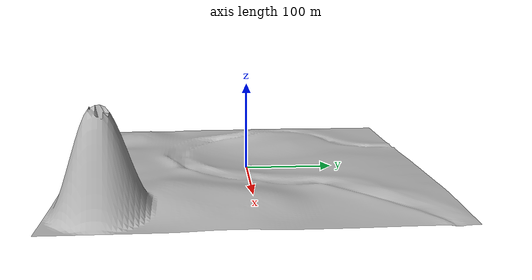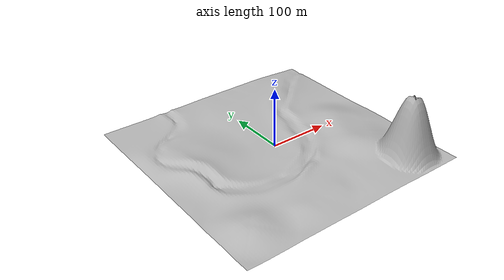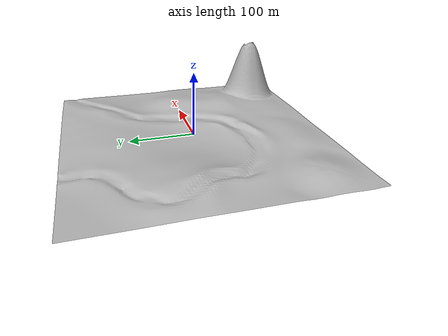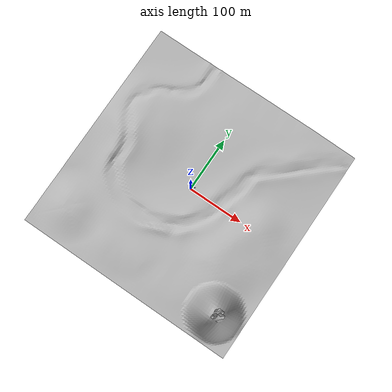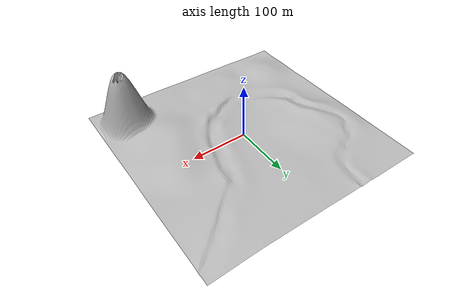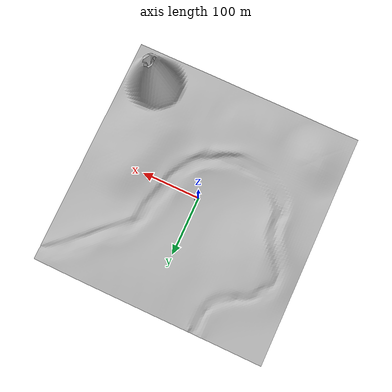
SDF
<?xml version="1.0" ?>
<sdf version="1.9">
  <world name="my_park_world">
    <physics name="1ms" type="ignored">
      <max_step_size>0.004</max_step_size>
      <real_time_factor>1.0</real_time_factor>
    </physics>

    <plugin filename="gz-sim-physics-system" name="gz::sim::systems::Physics"></plugin>
    <plugin filename="gz-sim-user-commands-system" name="gz::sim::systems::UserCommands"></plugin>
    <plugin filename="gz-sim-scene-broadcaster-system" name="gz::sim::systems::SceneBroadcaster"></plugin>
    <plugin filename="gz-sim-sensors-system" name="gz::sim::systems::Sensors">
      <render_engine>ogre2</render_engine>
    </plugin>
    <plugin filename="gz-sim-imu-system" name="gz::sim::systems::Imu"></plugin>
    <plugin filename="gz-sim-air-pressure-system" name="gz::sim::systems::AirPressure"></plugin>
    <plugin filename="gz-sim-magnetometer-system" name="gz::sim::systems::Magnetometer"></plugin>
    <plugin filename="gz-sim-apply-link-wrench-system" name="gz::sim::systems::ApplyLinkWrench"></plugin>
    <plugin filename="gz-sim-navsat-system" name="gz::sim::systems::NavSat"></plugin>
    <plugin filename="gz-sim-contact-system" name="gz::sim::systems::Contact"></plugin>

    <gravity>0 0 -9.8</gravity>
    <magnetic_field>6e-06 2.3e-05 -4.2e-05</magnetic_field>
    <atmosphere type="adiabatic"/>

    <scene>
      <grid>false</grid>
      <ambient>1.0 1.0 1.0</ambient>
      <background>0.8 0.8 0.8</background>
      <shadows>false</shadows>
    </scene>

    <spherical_coordinates>
      <surface_model>EARTH_WGS84</surface_model>
      <world_frame_orientation>ENU</world_frame_orientation>
      <latitude_deg>47.397971057728974</latitude_deg>
      <longitude_deg>8.546163739800146</longitude_deg>
      <elevation>0</elevation>
      <heading_deg>0</heading_deg>
    </spherical_coordinates>

    <light type="directional" name="sun">
      <cast_shadows>false</cast_shadows>
      <pose>0 0 10 0 0 0</pose>
      <diffuse>0.8 0.8 0.8 1</diffuse>
      <specular>0.2 0.2 0.2 1</specular>
      <attenuation>
        <range>1000</range>
        <constant>0.9</constant>
        <linear>0.01</linear>
        <quadratic>0.001</quadratic>
      </attenuation>
      <direction>-0.5 0.1 -0.9</direction>
    </light>

    <model name="ground_plane">
      <static>true</static>
      <link name="link">
        <collision name="collision">
          <geometry>
            <plane>
              <normal>0 0 1</normal>
              <size>2000 2000</size>
            </plane>
          </geometry>
          <surface>
            <friction>
              <ode>
                <mu>1.0</mu>
                <mu2>1.0</mu2>
              </ode>
            </friction>
          </surface>
        </collision>
      </link>
    </model>

    <include>
      <uri>model://my_park</uri>
      <n>my_park</n>
      <pose>0 0 0 0 0 0</pose>
    </include>

    <model name="ackermann_rover">
      <pose>5 5 3 0 0 0</pose>

      <link name="chassis">
        <pose>-0.151427 0 0.175 0 0 0</pose>
        <inertial>
          <mass>1.14395</mass>
          <inertia>
            <ixx>0.126164</ixx>
            <ixy>0</ixy>
            <ixz>0</ixz>
            <iyy>0.416519</iyy>
            <iyz>0</iyz>
            <izz>0.481014</izz>
          </inertia>
        </inertial>
        <visual name="visual">
          <geometry>
            <box>
              <size>2.01142 1 0.568726</size>
            </box>
          </geometry>
          <material>
            <ambient>0.5 0.5 1.0 1</ambient>
            <diffuse>0.5 0.5 1.0 1</diffuse>
            <specular>0.0 0.0 1.0 1</specular>
          </material>
        </visual>
        <collision name="collision">
          <geometry>
            <box>
              <size>2.01142 1 0.568726</size>
            </box>
          </geometry>
        </collision>
      </link>

      <link name="front_left_wheel">
        <pose>0.554283 0.625029 -0.025 -1.5707 0 0</pose>
        <inertial>
          <mass>2</mass>
          <inertia>
            <ixx>0.145833</ixx>
            <ixy>0</ixy>
            <ixz>0</ixz>
            <iyy>0.145833</iyy>
            <iyz>0</iyz>
            <izz>0.125</izz>
          </inertia>
        </inertial>
        <visual name="visual">
          <geometry>
            <cylinder>
              <length>0.15</length>
              <radius>0.3</radius>
            </cylinder>
          </geometry>
          <material>
            <ambient>0.2 0.2 0.2 1</ambient>
            <diffuse>0.2 0.2 0.2 1</diffuse>
            <specular>0.2 0.2 0.2 1</specular>
          </material>
        </visual>
        <collision name="collision">
          <geometry>
            <cylinder>
              <length>0.15</length>
              <radius>0.3</radius>
            </cylinder>
          </geometry>
          <surface>
            <friction>
              <ode>
                <mu>1.0</mu>
                <mu2>1.0</mu2>
                <fdir1>0 0 1</fdir1>
              </ode>
            </friction>
          </surface>
        </collision>
      </link>

      <link name="rear_left_wheel">
        <pose>-0.957138 0.625029 -0.025 -1.5707 0 0</pose>
        <inertial>
          <mass>2</mass>
          <inertia>
            <ixx>0.145833</ixx>
            <ixy>0</ixy>
            <ixz>0</ixz>
            <iyy>0.145833</iyy>
            <iyz>0</iyz>
            <izz>0.125</izz>
          </inertia>
        </inertial>
        <visual name="visual">
          <geometry>
            <cylinder>
              <length>0.15</length>
              <radius>0.3</radius>
            </cylinder>
          </geometry>
          <material>
            <ambient>0.2 0.2 0.2 1</ambient>
            <diffuse>0.2 0.2 0.2 1</diffuse>
            <specular>0.2 0.2 0.2 1</specular>
          </material>
        </visual>
        <collision name="collision">
          <geometry>
            <cylinder>
              <length>0.15</length>
              <radius>0.3</radius>
            </cylinder>
          </geometry>
          <surface>
            <friction>
              <ode>
                <mu>1.0</mu>
                <mu2>1.0</mu2>
                <fdir1>0 0 1</fdir1>
              </ode>
            </friction>
          </surface>
        </collision>
      </link>

      <link name="front_right_wheel">
        <pose>0.554282 -0.625029 -0.025 -1.5707 0 0</pose>
        <inertial>
          <mass>2</mass>
          <inertia>
            <ixx>0.145833</ixx>
            <ixy>0</ixy>
            <ixz>0</ixz>
            <iyy>0.145833</iyy>
            <iyz>0</iyz>
            <izz>0.125</izz>
          </inertia>
        </inertial>
        <visual name="visual">
          <geometry>
            <cylinder>
              <length>0.15</length>
              <radius>0.3</radius>
            </cylinder>
          </geometry>
          <material>
            <ambient>0.2 0.2 0.2 1</ambient>
            <diffuse>0.2 0.2 0.2 1</diffuse>
            <specular>0.2 0.2 0.2 1</specular>
          </material>
        </visual>
        <collision name="collision">
          <geometry>
            <cylinder>
              <length>0.15</length>
              <radius>0.3</radius>
            </cylinder>
          </geometry>
          <surface>
            <friction>
              <ode>
                <mu>1.0</mu>
                <mu2>1.0</mu2>
                <fdir1>0 0 1</fdir1>
              </ode>
            </friction>
          </surface>
        </collision>
      </link>

      <link name="rear_right_wheel">
        <pose>-0.957138 -0.625029 -0.025 -1.5707 0 0</pose>
        <inertial>
          <mass>2</mass>
          <inertia>
            <ixx>0.145833</ixx>
            <ixy>0</ixy>
            <ixz>0</ixz>
            <iyy>0.145833</iyy>
            <iyz>0</iyz>
            <izz>0.125</izz>
          </inertia>
        </inertial>
        <visual name="visual">
          <geometry>
            <cylinder>
              <length>0.15</length>
              <radius>0.3</radius>
            </cylinder>
          </geometry>
          <material>
            <ambient>0.2 0.2 0.2 1</ambient>
            <diffuse>0.2 0.2 0.2 1</diffuse>
            <specular>0.2 0.2 0.2 1</specular>
          </material>
        </visual>
        <collision name="collision">
          <geometry>
            <cylinder>
              <length>0.15</length>
              <radius>0.3</radius>
            </cylinder>
          </geometry>
          <surface>
            <friction>
              <ode>
                <mu>1.0</mu>
                <mu2>1.0</mu2>
                <fdir1>0 0 1</fdir1>
              </ode>
            </friction>
          </surface>
        </collision>
      </link>

      <link name="front_left_wheel_steering_link">
        <pose>0.554283 0.5 0.02 0 0 0</pose>
        <inertial>
          <mass>0.5</mass>
          <inertia>
            <ixx>0.0153</ixx>
            <iyy>0.025</iyy>
            <izz>0.0153</izz>
          </inertia>
        </inertial>
        <visual name="visual">
          <geometry>
            <cylinder>
              <length>0.1</length>
              <radius>0.03</radius>
            </cylinder>
          </geometry>
          <material>
            <ambient>1 1 1 1</ambient>
            <diffuse>1 1 1 1</diffuse>
          </material>
        </visual>
      </link>

      <link name="front_right_wheel_steering_link">
        <pose>0.554283 -0.5 0.02 0 0 0</pose>
        <inertial>
          <mass>0.5</mass>
          <inertia>
            <ixx>0.0153</ixx>
            <iyy>0.025</iyy>
            <izz>0.0153</izz>
          </inertia>
        </inertial>
        <visual name="visual">
          <geometry>
            <cylinder>
              <length>0.1</length>
              <radius>0.03</radius>
            </cylinder>
          </geometry>
          <material>
            <ambient>1 1 1 1</ambient>
            <diffuse>1 1 1 1</diffuse>
          </material>
        </visual>
      </link>

      <joint name="front_left_wheel_steering_joint" type="revolute">
        <parent>chassis</parent>
        <child>front_left_wheel_steering_link</child>
        <axis>
          <xyz>0 0 1</xyz>
          <limit>
            <lower>-0.6</lower>
            <upper>0.6</upper>
            <velocity>1.0</velocity>
            <effort>25</effort>
          </limit>
        </axis>
      </joint>

      <joint name="front_right_wheel_steering_joint" type="revolute">
        <parent>chassis</parent>
        <child>front_right_wheel_steering_link</child>
        <axis>
          <xyz>0 0 1</xyz>
          <limit>
            <lower>-0.6</lower>
            <upper>0.6</upper>
            <velocity>1.0</velocity>
            <effort>25</effort>
          </limit>
        </axis>
      </joint>

      <joint name="front_left_wheel_joint" type="revolute">
        <parent>front_left_wheel_steering_link</parent>
        <child>front_left_wheel</child>
        <axis>
          <xyz>0 0 1</xyz>
          <limit>
            <lower>-1.79769e+308</lower>
            <upper>1.79769e+308</upper>
          </limit>
        </axis>
      </joint>

      <joint name="front_right_wheel_joint" type="revolute">
        <parent>front_right_wheel_steering_link</parent>
        <child>front_right_wheel</child>
        <axis>
          <xyz>0 0 1</xyz>
          <limit>
            <lower>-1.79769e+308</lower>
            <upper>1.79769e+308</upper>
          </limit>
        </axis>
      </joint>

      <joint name="rear_left_wheel_joint" type="revolute">
        <parent>chassis</parent>
        <child>rear_left_wheel</child>
        <axis>
          <xyz>0 0 1</xyz>
          <limit>
            <lower>-1.79769e+308</lower>
            <upper>1.79769e+308</upper>
          </limit>
        </axis>
      </joint>

      <joint name="rear_right_wheel_joint" type="revolute">
        <parent>chassis</parent>
        <child>rear_right_wheel</child>
        <axis>
          <xyz>0 0 1</xyz>
          <limit>
            <lower>-1.79769e+308</lower>
            <upper>1.79769e+308</upper>
          </limit>
        </axis>
      </joint>

      <plugin filename="gz-sim-ackermann-steering-system" name="gz::sim::systems::AckermannSteering">
        <left_joint>front_left_wheel_joint</left_joint>
        <left_joint>rear_left_wheel_joint</left_joint>
        <right_joint>front_right_wheel_joint</right_joint>
        <right_joint>rear_right_wheel_joint</right_joint>
        <left_steering_joint>front_left_wheel_steering_joint</left_steering_joint>
        <right_steering_joint>front_right_wheel_steering_joint</right_steering_joint>
        <kingpin_width>1.0</kingpin_width>
        <steering_limit>0.5</steering_limit>
        <wheel_base>1.5</wheel_base>
        <wheel_separation>1.25</wheel_separation>
        <wheel_radius>0.3</wheel_radius>
        <min_velocity>-2</min_velocity>
        <max_velocity>2</max_velocity>
        <min_acceleration>-3</min_acceleration>
        <max_acceleration>3</max_acceleration>
        <topic>cmd_vel</topic>
        <odom_topic>odom</odom_topic>
        <frame_id>odom</frame_id>
        <child_frame_id>chassis</child_frame_id>
      </plugin>

      <plugin filename="gz-sim-joint-state-publisher-system" name="gz::sim::systems::JointStatePublisher"/>

    </model>

  </world>
</sdf>

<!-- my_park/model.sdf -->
<sdf version="1.9">
  <model name="my_park">
    <static>true</static>
    <link name="link">
      <visual name="visual">
        <pose>0 0 0 1.5708 0 3.1415</pose>
        <geometry>
          <mesh>
            <uri>model://my_park/mesh.obj</uri>
          </mesh>
        </geometry>
      </visual>
      <collision name="collision">
        <pose>0 0 0 1.5708 0 3.1415</pose>
        <geometry>
          <mesh>
            <uri>model://my_park/mesh.obj</uri>
          </mesh>
        </geometry>
      </collision>
    </link>
  </model>
</sdf>
